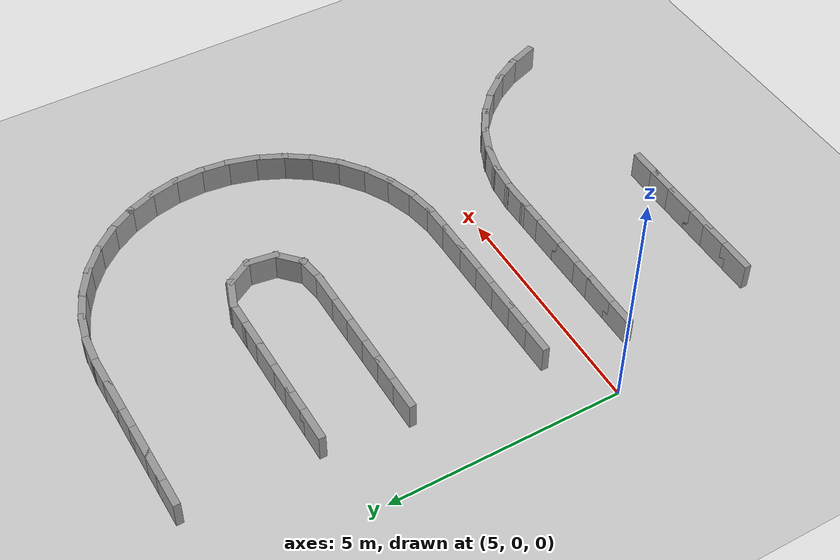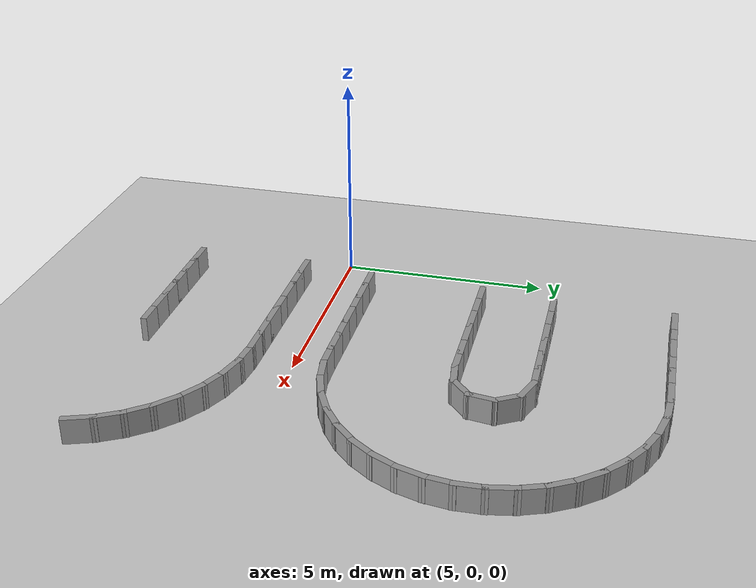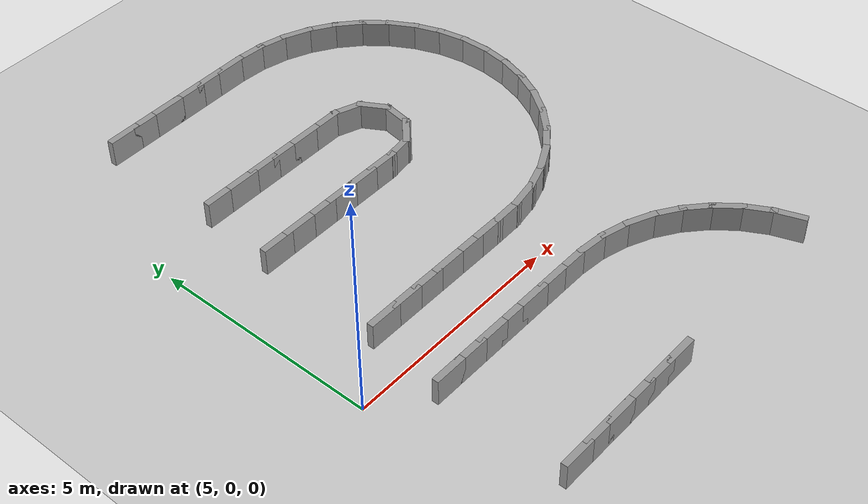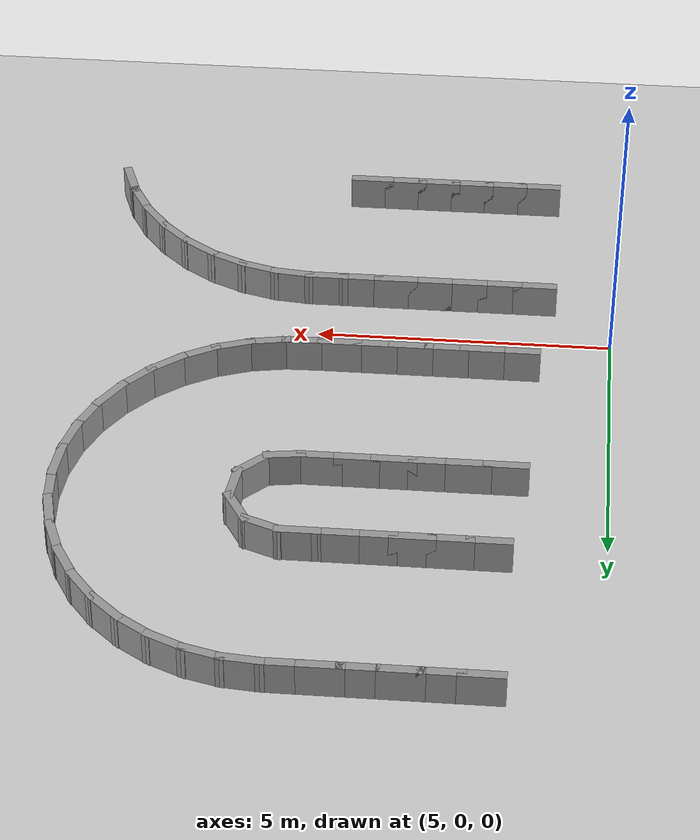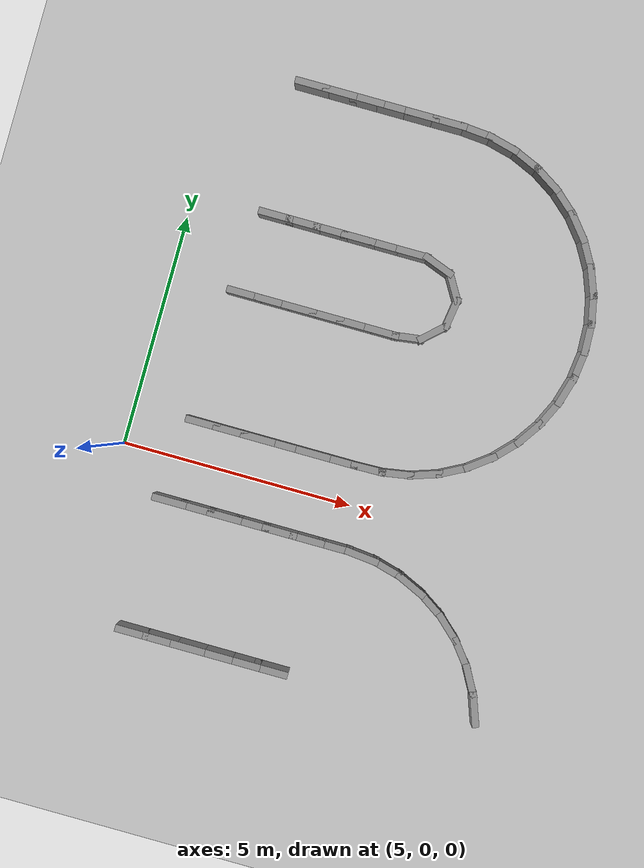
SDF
<sdf version="1.7">
 <world name="default">
  <model name="ground_plane">
   <static>1</static>
   <link name="link">
    <collision name="collision">
     <geometry><plane><normal>0 0 1</normal><size>100 100</size></plane></geometry>
     <surface><friction><ode><mu>100</mu><mu2>50</mu2></ode></friction></surface>
    </collision>
    <visual name="visual">
     <cast_shadows>0</cast_shadows>
     <geometry><plane><normal>0 0 1</normal><size>100 100</size></plane></geometry>
     <material>
      <script><uri>file://media/materials/scripts/gazebo.material</uri><name>Gazebo/Grey</name></script>
     </material>
    </visual>
   </link>
  </model>
  <model name="rand_serp_00">
   <link name="Wall_29">
    <collision name="Wall_29_Collision">
     <geometry><box><size>0.7500 0.1500 0.6000</size></box></geometry>
     <pose>0 0 0.3000 0 -0 0</pose>
    </collision>
    <visual name="Wall_29_Visual">
     <pose>0 0 0.3000 0 -0 0</pose>
     <geometry><box><size>0.7500 0.1500 0.6000</size></box></geometry>
     <material>
      <script><uri>file://media/materials/scripts/gazebo.material</uri><name>Gazebo/Grey</name></script>
      <ambient>1 1 1 1</ambient>
     </material>
    </visual>
    <pose>6.8567 8.3501 0 0 -0 0.00000</pose>
   </link>
   <link name="Wall_30">
    <collision name="Wall_30_Collision">
     <geometry><box><size>0.7500 0.1500 0.6000</size></box></geometry>
     <pose>0 0 0.3000 0 -0 0</pose>
    </collision>
    <visual name="Wall_30_Visual">
     <pose>0 0 0.3000 0 -0 0</pose>
     <geometry><box><size>0.7500 0.1500 0.6000</size></box></geometry>
     <material>
      <script><uri>file://media/materials/scripts/gazebo.material</uri><name>Gazebo/Grey</name></script>
      <ambient>1 1 1 1</ambient>
     </material>
    </visual>
    <pose>7.4567 8.3501 0 0 -0 0.00000</pose>
   </link>
   <link name="Wall_31">
    <collision name="Wall_31_Collision">
     <geometry><box><size>0.7500 0.1500 0.6000</size></box></geometry>
     <pose>0 0 0.3000 0 -0 0</pose>
    </collision>
    <visual name="Wall_31_Visual">
     <pose>0 0 0.3000 0 -0 0</pose>
     <geometry><box><size>0.7500 0.1500 0.6000</size></box></geometry>
     <material>
      <script><uri>file://media/materials/scripts/gazebo.material</uri><name>Gazebo/Grey</name></script>
      <ambient>1 1 1 1</ambient>
     </material>
    </visual>
    <pose>8.0567 8.3501 0 0 -0 0.00000</pose>
   </link>
   <link name="Wall_32">
    <collision name="Wall_32_Collision">
     <geometry><box><size>0.7500 0.1500 0.6000</size></box></geometry>
     <pose>0 0 0.3000 0 -0 0</pose>
    </collision>
    <visual name="Wall_32_Visual">
     <pose>0 0 0.3000 0 -0 0</pose>
     <geometry><box><size>0.7500 0.1500 0.6000</size></box></geometry>
     <material>
      <script><uri>file://media/materials/scripts/gazebo.material</uri><name>Gazebo/Grey</name></script>
      <ambient>1 1 1 1</ambient>
     </material>
    </visual>
    <pose>8.6567 8.3501 0 0 -0 0.00000</pose>
   </link>
   <link name="Wall_33">
    <collision name="Wall_33_Collision">
     <geometry><box><size>0.7500 0.1500 0.6000</size></box></geometry>
     <pose>0 0 0.3000 0 -0 0</pose>
    </collision>
    <visual name="Wall_33_Visual">
     <pose>0 0 0.3000 0 -0 0</pose>
     <geometry><box><size>0.7500 0.1500 0.6000</size></box></geometry>
     <material>
      <script><uri>file://media/materials/scripts/gazebo.material</uri><name>Gazebo/Grey</name></script>
      <ambient>1 1 1 1</ambient>
     </material>
    </visual>
    <pose>9.2567 8.3501 0 0 -0 0.00000</pose>
   </link>
   <link name="Wall_34">
    <collision name="Wall_34_Collision">
     <geometry><box><size>0.7500 0.1500 0.6000</size></box></geometry>
     <pose>0 0 0.3000 0 -0 0</pose>
    </collision>
    <visual name="Wall_34_Visual">
     <pose>0 0 0.3000 0 -0 0</pose>
     <geometry><box><size>0.7500 0.1500 0.6000</size></box></geometry>
     <material>
      <script><uri>file://media/materials/scripts/gazebo.material</uri><name>Gazebo/Grey</name></script>
      <ambient>1 1 1 1</ambient>
     </material>
    </visual>
    <pose>9.8567 8.3500 0 0 -0 -0.00021</pose>
   </link>
   <link name="Wall_35">
    <collision name="Wall_35_Collision">
     <geometry><box><size>0.7494 0.1500 0.6000</size></box></geometry>
     <pose>0 0 0.3000 0 -0 0</pose>
    </collision>
    <visual name="Wall_35_Visual">
     <pose>0 0 0.3000 0 -0 0</pose>
     <geometry><box><size>0.7494 0.1500 0.6000</size></box></geometry>
     <material>
      <script><uri>file://media/materials/scripts/gazebo.material</uri><name>Gazebo/Grey</name></script>
      <ambient>1 1 1 1</ambient>
     </material>
    </visual>
    <pose>10.4553 8.3247 0 0 -0 -0.08430</pose>
   </link>
   <link name="Wall_36">
    <collision name="Wall_36_Collision">
     <geometry><box><size>0.7493 0.1500 0.6000</size></box></geometry>
     <pose>0 0 0.3000 0 -0 0</pose>
    </collision>
    <visual name="Wall_36_Visual">
     <pose>0 0 0.3000 0 -0 0</pose>
     <geometry><box><size>0.7493 0.1500 0.6000</size></box></geometry>
     <material>
      <script><uri>file://media/materials/scripts/gazebo.material</uri><name>Gazebo/Grey</name></script>
      <ambient>1 1 1 1</ambient>
     </material>
    </visual>
    <pose>11.0446 8.2269 0 0 -0 -0.24476</pose>
   </link>
   <link name="Wall_37">
    <collision name="Wall_37_Collision">
     <geometry><box><size>0.7493 0.1500 0.6000</size></box></geometry>
     <pose>0 0 0.3000 0 -0 0</pose>
    </collision>
    <visual name="Wall_37_Visual">
     <pose>0 0 0.3000 0 -0 0</pose>
     <geometry><box><size>0.7493 0.1500 0.6000</size></box></geometry>
     <material>
      <script><uri>file://media/materials/scripts/gazebo.material</uri><name>Gazebo/Grey</name></script>
      <ambient>1 1 1 1</ambient>
     </material>
    </visual>
    <pose>11.6107 8.0361 0 0 -0 -0.40544</pose>
   </link>
   <link name="Wall_38">
    <collision name="Wall_38_Collision">
     <geometry><box><size>0.7493 0.1500 0.6000</size></box></geometry>
     <pose>0 0 0.3000 0 -0 0</pose>
    </collision>
    <visual name="Wall_38_Visual">
     <pose>0 0 0.3000 0 -0 0</pose>
     <geometry><box><size>0.7493 0.1500 0.6000</size></box></geometry>
     <material>
      <script><uri>file://media/materials/scripts/gazebo.material</uri><name>Gazebo/Grey</name></script>
      <ambient>1 1 1 1</ambient>
     </material>
    </visual>
    <pose>12.1390 7.7572 0 0 -0 -0.56612</pose>
   </link>
   <link name="Wall_39">
    <collision name="Wall_39_Collision">
     <geometry><box><size>0.7493 0.1500 0.6000</size></box></geometry>
     <pose>0 0 0.3000 0 -0 0</pose>
    </collision>
    <visual name="Wall_39_Visual">
     <pose>0 0 0.3000 0 -0 0</pose>
     <geometry><box><size>0.7493 0.1500 0.6000</size></box></geometry>
     <material>
      <script><uri>file://media/materials/scripts/gazebo.material</uri><name>Gazebo/Grey</name></script>
      <ambient>1 1 1 1</ambient>
     </material>
    </visual>
    <pose>12.6158 7.3973 0 0 -0 -0.72681</pose>
   </link>
   <link name="Wall_40">
    <collision name="Wall_40_Collision">
     <geometry><box><size>0.7493 0.1500 0.6000</size></box></geometry>
     <pose>0 0 0.3000 0 -0 0</pose>
    </collision>
    <visual name="Wall_40_Visual">
     <pose>0 0 0.3000 0 -0 0</pose>
     <geometry><box><size>0.7493 0.1500 0.6000</size></box></geometry>
     <material>
      <script><uri>file://media/materials/scripts/gazebo.material</uri><name>Gazebo/Grey</name></script>
      <ambient>1 1 1 1</ambient>
     </material>
    </visual>
    <pose>13.0289 6.9658 0 0 -0 -0.88749</pose>
   </link>
   <link name="Wall_41">
    <collision name="Wall_41_Collision">
     <geometry><box><size>0.7493 0.1500 0.6000</size></box></geometry>
     <pose>0 0 0.3000 0 -0 0</pose>
    </collision>
    <visual name="Wall_41_Visual">
     <pose>0 0 0.3000 0 -0 0</pose>
     <geometry><box><size>0.7493 0.1500 0.6000</size></box></geometry>
     <material>
      <script><uri>file://media/materials/scripts/gazebo.material</uri><name>Gazebo/Grey</name></script>
      <ambient>1 1 1 1</ambient>
     </material>
    </visual>
    <pose>13.3677 6.4738 0 0 -0 -1.04818</pose>
   </link>
   <link name="Wall_42">
    <collision name="Wall_42_Collision">
     <geometry><box><size>0.7493 0.1500 0.6000</size></box></geometry>
     <pose>0 0 0.3000 0 -0 0</pose>
    </collision>
    <visual name="Wall_42_Visual">
     <pose>0 0 0.3000 0 -0 0</pose>
     <geometry><box><size>0.7493 0.1500 0.6000</size></box></geometry>
     <material>
      <script><uri>file://media/materials/scripts/gazebo.material</uri><name>Gazebo/Grey</name></script>
      <ambient>1 1 1 1</ambient>
     </material>
    </visual>
    <pose>13.6234 5.9339 0 0 -0 -1.20886</pose>
   </link>
   <link name="Wall_43">
    <collision name="Wall_43_Collision">
     <geometry><box><size>0.7493 0.1500 0.6000</size></box></geometry>
     <pose>0 0 0.3000 0 -0 0</pose>
    </collision>
    <visual name="Wall_43_Visual">
     <pose>0 0 0.3000 0 -0 0</pose>
     <geometry><box><size>0.7493 0.1500 0.6000</size></box></geometry>
     <material>
      <script><uri>file://media/materials/scripts/gazebo.material</uri><name>Gazebo/Grey</name></script>
      <ambient>1 1 1 1</ambient>
     </material>
    </visual>
    <pose>13.7893 5.3601 0 0 -0 -1.36954</pose>
   </link>
   <link name="Wall_44">
    <collision name="Wall_44_Collision">
     <geometry><box><size>0.7493 0.1500 0.6000</size></box></geometry>
     <pose>0 0 0.3000 0 -0 0</pose>
    </collision>
    <visual name="Wall_44_Visual">
     <pose>0 0 0.3000 0 -0 0</pose>
     <geometry><box><size>0.7493 0.1500 0.6000</size></box></geometry>
     <material>
      <script><uri>file://media/materials/scripts/gazebo.material</uri><name>Gazebo/Grey</name></script>
      <ambient>1 1 1 1</ambient>
     </material>
    </visual>
    <pose>13.8614 4.7671 0 0 -0 -1.53023</pose>
   </link>
   <link name="Wall_45">
    <collision name="Wall_45_Collision">
     <geometry><box><size>0.7493 0.1500 0.6000</size></box></geometry>
     <pose>0 0 0.3000 0 -0 0</pose>
    </collision>
    <visual name="Wall_45_Visual">
     <pose>0 0 0.3000 0 -0 0</pose>
     <geometry><box><size>0.7493 0.1500 0.6000</size></box></geometry>
     <material>
      <script><uri>file://media/materials/scripts/gazebo.material</uri><name>Gazebo/Grey</name></script>
      <ambient>1 1 1 1</ambient>
     </material>
    </visual>
    <pose>13.8376 4.1703 0 0 -0 -1.69091</pose>
   </link>
   <link name="Wall_46">
    <collision name="Wall_46_Collision">
     <geometry><box><size>0.7493 0.1500 0.6000</size></box></geometry>
     <pose>0 0 0.3000 0 -0 0</pose>
    </collision>
    <visual name="Wall_46_Visual">
     <pose>0 0 0.3000 0 -0 0</pose>
     <geometry><box><size>0.7493 0.1500 0.6000</size></box></geometry>
     <material>
      <script><uri>file://media/materials/scripts/gazebo.material</uri><name>Gazebo/Grey</name></script>
      <ambient>1 1 1 1</ambient>
     </material>
    </visual>
    <pose>13.7187 3.5849 0 0 -0 -1.85160</pose>
   </link>
   <link name="Wall_47">
    <collision name="Wall_47_Collision">
     <geometry><box><size>0.7493 0.1500 0.6000</size></box></geometry>
     <pose>0 0 0.3000 0 -0 0</pose>
    </collision>
    <visual name="Wall_47_Visual">
     <pose>0 0 0.3000 0 -0 0</pose>
     <geometry><box><size>0.7493 0.1500 0.6000</size></box></geometry>
     <material>
      <script><uri>file://media/materials/scripts/gazebo.material</uri><name>Gazebo/Grey</name></script>
      <ambient>1 1 1 1</ambient>
     </material>
    </visual>
    <pose>13.5076 3.0261 0 0 -0 -2.01228</pose>
   </link>
   <link name="Wall_48">
    <collision name="Wall_48_Collision">
     <geometry><box><size>0.7493 0.1500 0.6000</size></box></geometry>
     <pose>0 0 0.3000 0 -0 0</pose>
    </collision>
    <visual name="Wall_48_Visual">
     <pose>0 0 0.3000 0 -0 0</pose>
     <geometry><box><size>0.7493 0.1500 0.6000</size></box></geometry>
     <material>
      <script><uri>file://media/materials/scripts/gazebo.material</uri><name>Gazebo/Grey</name></script>
      <ambient>1 1 1 1</ambient>
     </material>
    </visual>
    <pose>13.2099 2.5082 0 0 -0 -2.17297</pose>
   </link>
   <link name="Wall_49">
    <collision name="Wall_49_Collision">
     <geometry><box><size>0.7493 0.1500 0.6000</size></box></geometry>
     <pose>0 0 0.3000 0 -0 0</pose>
    </collision>
    <visual name="Wall_49_Visual">
     <pose>0 0 0.3000 0 -0 0</pose>
     <geometry><box><size>0.7493 0.1500 0.6000</size></box></geometry>
     <material>
      <script><uri>file://media/materials/scripts/gazebo.material</uri><name>Gazebo/Grey</name></script>
      <ambient>1 1 1 1</ambient>
     </material>
    </visual>
    <pose>12.8331 2.0447 0 0 -0 -2.33365</pose>
   </link>
   <link name="Wall_50">
    <collision name="Wall_50_Collision">
     <geometry><box><size>0.7493 0.1500 0.6000</size></box></geometry>
     <pose>0 0 0.3000 0 -0 0</pose>
    </collision>
    <visual name="Wall_50_Visual">
     <pose>0 0 0.3000 0 -0 0</pose>
     <geometry><box><size>0.7493 0.1500 0.6000</size></box></geometry>
     <material>
      <script><uri>file://media/materials/scripts/gazebo.material</uri><name>Gazebo/Grey</name></script>
      <ambient>1 1 1 1</ambient>
     </material>
    </visual>
    <pose>12.3870 1.6474 0 0 -0 -2.49433</pose>
   </link>
   <link name="Wall_51">
    <collision name="Wall_51_Collision">
     <geometry><box><size>0.7493 0.1500 0.6000</size></box></geometry>
     <pose>0 0 0.3000 0 -0 0</pose>
    </collision>
    <visual name="Wall_51_Visual">
     <pose>0 0 0.3000 0 -0 0</pose>
     <geometry><box><size>0.7493 0.1500 0.6000</size></box></geometry>
     <material>
      <script><uri>file://media/materials/scripts/gazebo.material</uri><name>Gazebo/Grey</name></script>
      <ambient>1 1 1 1</ambient>
     </material>
    </visual>
    <pose>11.8831 1.3266 0 0 -0 -2.65502</pose>
   </link>
   <link name="Wall_52">
    <collision name="Wall_52_Collision">
     <geometry><box><size>0.7493 0.1500 0.6000</size></box></geometry>
     <pose>0 0 0.3000 0 -0 0</pose>
    </collision>
    <visual name="Wall_52_Visual">
     <pose>0 0 0.3000 0 -0 0</pose>
     <geometry><box><size>0.7493 0.1500 0.6000</size></box></geometry>
     <material>
      <script><uri>file://media/materials/scripts/gazebo.material</uri><name>Gazebo/Grey</name></script>
      <ambient>1 1 1 1</ambient>
     </material>
    </visual>
    <pose>11.3343 1.0905 0 0 -0 -2.81570</pose>
   </link>
   <link name="Wall_53">
    <collision name="Wall_53_Collision">
     <geometry><box><size>0.7493 0.1500 0.6000</size></box></geometry>
     <pose>0 0 0.3000 0 -0 0</pose>
    </collision>
    <visual name="Wall_53_Visual">
     <pose>0 0 0.3000 0 -0 0</pose>
     <geometry><box><size>0.7493 0.1500 0.6000</size></box></geometry>
     <material>
      <script><uri>file://media/materials/scripts/gazebo.material</uri><name>Gazebo/Grey</name></script>
      <ambient>1 1 1 1</ambient>
     </material>
    </visual>
    <pose>10.7548 0.9453 0 0 -0 -2.97639</pose>
   </link>
   <link name="Wall_54">
    <collision name="Wall_54_Collision">
     <geometry><box><size>0.7498 0.1500 0.6000</size></box></geometry>
     <pose>0 0 0.3000 0 -0 0</pose>
    </collision>
    <visual name="Wall_54_Visual">
     <pose>0 0 0.3000 0 -0 0</pose>
     <geometry><box><size>0.7498 0.1500 0.6000</size></box></geometry>
     <material>
      <script><uri>file://media/materials/scripts/gazebo.material</uri><name>Gazebo/Grey</name></script>
      <ambient>1 1 1 1</ambient>
     </material>
    </visual>
    <pose>10.1595 0.8892 0 0 -0 -3.11871</pose>
   </link>
   <link name="Wall_55">
    <collision name="Wall_55_Collision">
     <geometry><box><size>0.7500 0.1500 0.6000</size></box></geometry>
     <pose>0 0 0.3000 0 -0 0</pose>
    </collision>
    <visual name="Wall_55_Visual">
     <pose>0 0 0.3000 0 -0 0</pose>
     <geometry><box><size>0.7500 0.1500 0.6000</size></box></geometry>
     <material>
      <script><uri>file://media/materials/scripts/gazebo.material</uri><name>Gazebo/Grey</name></script>
      <ambient>1 1 1 1</ambient>
     </material>
    </visual>
    <pose>9.5596 0.8823 0 0 -0 3.14159</pose>
   </link>
   <link name="Wall_56">
    <collision name="Wall_56_Collision">
     <geometry><box><size>0.7500 0.1500 0.6000</size></box></geometry>
     <pose>0 0 0.3000 0 -0 0</pose>
    </collision>
    <visual name="Wall_56_Visual">
     <pose>0 0 0.3000 0 -0 0</pose>
     <geometry><box><size>0.7500 0.1500 0.6000</size></box></geometry>
     <material>
      <script><uri>file://media/materials/scripts/gazebo.material</uri><name>Gazebo/Grey</name></script>
      <ambient>1 1 1 1</ambient>
     </material>
    </visual>
    <pose>8.9596 0.8823 0 0 -0 3.14159</pose>
   </link>
   <link name="Wall_57">
    <collision name="Wall_57_Collision">
     <geometry><box><size>0.7500 0.1500 0.6000</size></box></geometry>
     <pose>0 0 0.3000 0 -0 0</pose>
    </collision>
    <visual name="Wall_57_Visual">
     <pose>0 0 0.3000 0 -0 0</pose>
     <geometry><box><size>0.7500 0.1500 0.6000</size></box></geometry>
     <material>
      <script><uri>file://media/materials/scripts/gazebo.material</uri><name>Gazebo/Grey</name></script>
      <ambient>1 1 1 1</ambient>
     </material>
    </visual>
    <pose>8.3596 0.8823 0 0 -0 3.14159</pose>
   </link>
   <link name="Wall_58">
    <collision name="Wall_58_Collision">
     <geometry><box><size>0.7500 0.1500 0.6000</size></box></geometry>
     <pose>0 0 0.3000 0 -0 0</pose>
    </collision>
    <visual name="Wall_58_Visual">
     <pose>0 0 0.3000 0 -0 0</pose>
     <geometry><box><size>0.7500 0.1500 0.6000</size></box></geometry>
     <material>
      <script><uri>file://media/materials/scripts/gazebo.material</uri><name>Gazebo/Grey</name></script>
      <ambient>1 1 1 1</ambient>
     </material>
    </visual>
    <pose>7.7596 0.8823 0 0 -0 3.14159</pose>
   </link>
   <link name="Wall_59">
    <collision name="Wall_59_Collision">
     <geometry><box><size>0.7500 0.1500 0.6000</size></box></geometry>
     <pose>0 0 0.3000 0 -0 0</pose>
    </collision>
    <visual name="Wall_59_Visual">
     <pose>0 0 0.3000 0 -0 0</pose>
     <geometry><box><size>0.7500 0.1500 0.6000</size></box></geometry>
     <material>
      <script><uri>file://media/materials/scripts/gazebo.material</uri><name>Gazebo/Grey</name></script>
      <ambient>1 1 1 1</ambient>
     </material>
    </visual>
    <pose>7.1596 0.8823 0 0 -0 3.14159</pose>
   </link>
   <link name="Wall_60">
    <collision name="Wall_60_Collision">
     <geometry><box><size>0.7500 0.1500 0.6000</size></box></geometry>
     <pose>0 0 0.3000 0 -0 0</pose>
    </collision>
    <visual name="Wall_60_Visual">
     <pose>0 0 0.3000 0 -0 0</pose>
     <geometry><box><size>0.7500 0.1500 0.6000</size></box></geometry>
     <material>
      <script><uri>file://media/materials/scripts/gazebo.material</uri><name>Gazebo/Grey</name></script>
      <ambient>1 1 1 1</ambient>
     </material>
    </visual>
    <pose>6.5596 0.8823 0 0 -0 3.14159</pose>
   </link>
   <link name="Wall_120">
    <collision name="Wall_120_Collision">
     <geometry><box><size>0.7500 0.1500 0.6000</size></box></geometry>
     <pose>0 0 0.3000 0 -0 0</pose>
    </collision>
    <visual name="Wall_120_Visual">
     <pose>0 0 0.3000 0 -0 0</pose>
     <geometry><box><size>0.7500 0.1500 0.6000</size></box></geometry>
     <material>
      <script><uri>file://media/materials/scripts/gazebo.material</uri><name>Gazebo/Grey</name></script>
      <ambient>1 1 1 1</ambient>
     </material>
    </visual>
    <pose>6.3253 -0.8823 0 0 -0 0.00000</pose>
   </link>
   <link name="Wall_121">
    <collision name="Wall_121_Collision">
     <geometry><box><size>0.7500 0.1500 0.6000</size></box></geometry>
     <pose>0 0 0.3000 0 -0 0</pose>
    </collision>
    <visual name="Wall_121_Visual">
     <pose>0 0 0.3000 0 -0 0</pose>
     <geometry><box><size>0.7500 0.1500 0.6000</size></box></geometry>
     <material>
      <script><uri>file://media/materials/scripts/gazebo.material</uri><name>Gazebo/Grey</name></script>
      <ambient>1 1 1 1</ambient>
     </material>
    </visual>
    <pose>6.9253 -0.8823 0 0 -0 0.00000</pose>
   </link>
   <link name="Wall_122">
    <collision name="Wall_122_Collision">
     <geometry><box><size>0.7500 0.1500 0.6000</size></box></geometry>
     <pose>0 0 0.3000 0 -0 0</pose>
    </collision>
    <visual name="Wall_122_Visual">
     <pose>0 0 0.3000 0 -0 0</pose>
     <geometry><box><size>0.7500 0.1500 0.6000</size></box></geometry>
     <material>
      <script><uri>file://media/materials/scripts/gazebo.material</uri><name>Gazebo/Grey</name></script>
      <ambient>1 1 1 1</ambient>
     </material>
    </visual>
    <pose>7.5253 -0.8823 0 0 -0 0.00000</pose>
   </link>
   <link name="Wall_123">
    <collision name="Wall_123_Collision">
     <geometry><box><size>0.7500 0.1500 0.6000</size></box></geometry>
     <pose>0 0 0.3000 0 -0 0</pose>
    </collision>
    <visual name="Wall_123_Visual">
     <pose>0 0 0.3000 0 -0 0</pose>
     <geometry><box><size>0.7500 0.1500 0.6000</size></box></geometry>
     <material>
      <script><uri>file://media/materials/scripts/gazebo.material</uri><name>Gazebo/Grey</name></script>
      <ambient>1 1 1 1</ambient>
     </material>
    </visual>
    <pose>8.1253 -0.8823 0 0 -0 0.00000</pose>
   </link>
   <link name="Wall_124">
    <collision name="Wall_124_Collision">
     <geometry><box><size>0.7500 0.1500 0.6000</size></box></geometry>
     <pose>0 0 0.3000 0 -0 0</pose>
    </collision>
    <visual name="Wall_124_Visual">
     <pose>0 0 0.3000 0 -0 0</pose>
     <geometry><box><size>0.7500 0.1500 0.6000</size></box></geometry>
     <material>
      <script><uri>file://media/materials/scripts/gazebo.material</uri><name>Gazebo/Grey</name></script>
      <ambient>1 1 1 1</ambient>
     </material>
    </visual>
    <pose>8.7253 -0.8823 0 0 -0 0.00000</pose>
   </link>
   <link name="Wall_125">
    <collision name="Wall_125_Collision">
     <geometry><box><size>0.7500 0.1500 0.6000</size></box></geometry>
     <pose>0 0 0.3000 0 -0 0</pose>
    </collision>
    <visual name="Wall_125_Visual">
     <pose>0 0 0.3000 0 -0 0</pose>
     <geometry><box><size>0.7500 0.1500 0.6000</size></box></geometry>
     <material>
      <script><uri>file://media/materials/scripts/gazebo.material</uri><name>Gazebo/Grey</name></script>
      <ambient>1 1 1 1</ambient>
     </material>
    </visual>
    <pose>9.3253 -0.8823 0 0 -0 0.00000</pose>
   </link>
   <link name="Wall_126">
    <collision name="Wall_126_Collision">
     <geometry><box><size>0.7500 0.1500 0.6000</size></box></geometry>
     <pose>0 0 0.3000 0 -0 0</pose>
    </collision>
    <visual name="Wall_126_Visual">
     <pose>0 0 0.3000 0 -0 0</pose>
     <geometry><box><size>0.7500 0.1500 0.6000</size></box></geometry>
     <material>
      <script><uri>file://media/materials/scripts/gazebo.material</uri><name>Gazebo/Grey</name></script>
      <ambient>1 1 1 1</ambient>
     </material>
    </visual>
    <pose>9.9253 -0.8830 0 0 -0 -0.00249</pose>
   </link>
   <link name="Wall_127">
    <collision name="Wall_127_Collision">
     <geometry><box><size>0.7493 0.1500 0.6000</size></box></geometry>
     <pose>0 0 0.3000 0 -0 0</pose>
    </collision>
    <visual name="Wall_127_Visual">
     <pose>0 0 0.3000 0 -0 0</pose>
     <geometry><box><size>0.7493 0.1500 0.6000</size></box></geometry>
     <material>
      <script><uri>file://media/materials/scripts/gazebo.material</uri><name>Gazebo/Grey</name></script>
      <ambient>1 1 1 1</ambient>
     </material>
    </visual>
    <pose>10.5234 -0.9145 0 0 -0 -0.10250</pose>
   </link>
   <link name="Wall_128">
    <collision name="Wall_128_Collision">
     <geometry><box><size>0.7493 0.1500 0.6000</size></box></geometry>
     <pose>0 0 0.3000 0 -0 0</pose>
    </collision>
    <visual name="Wall_128_Visual">
     <pose>0 0 0.3000 0 -0 0</pose>
     <geometry><box><size>0.7493 0.1500 0.6000</size></box></geometry>
     <material>
      <script><uri>file://media/materials/scripts/gazebo.material</uri><name>Gazebo/Grey</name></script>
      <ambient>1 1 1 1</ambient>
     </material>
    </visual>
    <pose>11.1108 -1.0230 0 0 -0 -0.26296</pose>
   </link>
   <link name="Wall_129">
    <collision name="Wall_129_Collision">
     <geometry><box><size>0.7493 0.1500 0.6000</size></box></geometry>
     <pose>0 0 0.3000 0 -0 0</pose>
    </collision>
    <visual name="Wall_129_Visual">
     <pose>0 0 0.3000 0 -0 0</pose>
     <geometry><box><size>0.7493 0.1500 0.6000</size></box></geometry>
     <material>
      <script><uri>file://media/materials/scripts/gazebo.material</uri><name>Gazebo/Grey</name></script>
      <ambient>1 1 1 1</ambient>
     </material>
    </visual>
    <pose>11.6733 -1.2241 0 0 -0 -0.42365</pose>
   </link>
   <link name="Wall_130">
    <collision name="Wall_130_Collision">
     <geometry><box><size>0.7493 0.1500 0.6000</size></box></geometry>
     <pose>0 0 0.3000 0 -0 0</pose>
    </collision>
    <visual name="Wall_130_Visual">
     <pose>0 0 0.3000 0 -0 0</pose>
     <geometry><box><size>0.7493 0.1500 0.6000</size></box></geometry>
     <material>
      <script><uri>file://media/materials/scripts/gazebo.material</uri><name>Gazebo/Grey</name></script>
      <ambient>1 1 1 1</ambient>
     </material>
    </visual>
    <pose>12.1964 -1.5126 0 0 -0 -0.58433</pose>
   </link>
   <link name="Wall_131">
    <collision name="Wall_131_Collision">
     <geometry><box><size>0.7493 0.1500 0.6000</size></box></geometry>
     <pose>0 0 0.3000 0 -0 0</pose>
    </collision>
    <visual name="Wall_131_Visual">
     <pose>0 0 0.3000 0 -0 0</pose>
     <geometry><box><size>0.7493 0.1500 0.6000</size></box></geometry>
     <material>
      <script><uri>file://media/materials/scripts/gazebo.material</uri><name>Gazebo/Grey</name></script>
      <ambient>1 1 1 1</ambient>
     </material>
    </visual>
    <pose>12.6666 -1.8810 0 0 -0 -0.74501</pose>
   </link>
   <link name="Wall_132">
    <collision name="Wall_132_Collision">
     <geometry><box><size>0.7493 0.1500 0.6000</size></box></geometry>
     <pose>0 0 0.3000 0 -0 0</pose>
    </collision>
    <visual name="Wall_132_Visual">
     <pose>0 0 0.3000 0 -0 0</pose>
     <geometry><box><size>0.7493 0.1500 0.6000</size></box></geometry>
     <material>
      <script><uri>file://media/materials/scripts/gazebo.material</uri><name>Gazebo/Grey</name></script>
      <ambient>1 1 1 1</ambient>
     </material>
    </visual>
    <pose>13.0718 -2.3200 0 0 -0 -0.90570</pose>
   </link>
   <link name="Wall_133">
    <collision name="Wall_133_Collision">
     <geometry><box><size>0.7493 0.1500 0.6000</size></box></geometry>
     <pose>0 0 0.3000 0 -0 0</pose>
    </collision>
    <visual name="Wall_133_Visual">
     <pose>0 0 0.3000 0 -0 0</pose>
     <geometry><box><size>0.7493 0.1500 0.6000</size></box></geometry>
     <material>
      <script><uri>file://media/materials/scripts/gazebo.material</uri><name>Gazebo/Grey</name></script>
      <ambient>1 1 1 1</ambient>
     </material>
    </visual>
    <pose>13.4015 -2.8181 0 0 -0 -1.06638</pose>
   </link>
   <link name="Wall_134">
    <collision name="Wall_134_Collision">
     <geometry><box><size>0.7493 0.1500 0.6000</size></box></geometry>
     <pose>0 0 0.3000 0 -0 0</pose>
    </collision>
    <visual name="Wall_134_Visual">
     <pose>0 0 0.3000 0 -0 0</pose>
     <geometry><box><size>0.7493 0.1500 0.6000</size></box></geometry>
     <material>
      <script><uri>file://media/materials/scripts/gazebo.material</uri><name>Gazebo/Grey</name></script>
      <ambient>1 1 1 1</ambient>
     </material>
    </visual>
    <pose>13.6473 -3.3626 0 0 -0 -1.22707</pose>
   </link>
   <link name="Wall_211">
    <collision name="Wall_211_Collision">
     <geometry><box><size>0.7500 0.1500 0.6000</size></box></geometry>
     <pose>0 0 0.3000 0 -0 0</pose>
    </collision>
    <visual name="Wall_211_Visual">
     <pose>0 0 0.3000 0 -0 0</pose>
     <geometry><box><size>0.7500 0.1500 0.6000</size></box></geometry>
     <material>
      <script><uri>file://media/materials/scripts/gazebo.material</uri><name>Gazebo/Grey</name></script>
      <ambient>1 1 1 1</ambient>
     </material>
    </visual>
    <pose>6.8567 5.4985 0 0 -0 0.00000</pose>
   </link>
   <link name="Wall_212">
    <collision name="Wall_212_Collision">
     <geometry><box><size>0.7500 0.1500 0.6000</size></box></geometry>
     <pose>0 0 0.3000 0 -0 0</pose>
    </collision>
    <visual name="Wall_212_Visual">
     <pose>0 0 0.3000 0 -0 0</pose>
     <geometry><box><size>0.7500 0.1500 0.6000</size></box></geometry>
     <material>
      <script><uri>file://media/materials/scripts/gazebo.material</uri><name>Gazebo/Grey</name></script>
      <ambient>1 1 1 1</ambient>
     </material>
    </visual>
    <pose>7.4567 5.4985 0 0 -0 0.00000</pose>
   </link>
   <link name="Wall_213">
    <collision name="Wall_213_Collision">
     <geometry><box><size>0.7500 0.1500 0.6000</size></box></geometry>
     <pose>0 0 0.3000 0 -0 0</pose>
    </collision>
    <visual name="Wall_213_Visual">
     <pose>0 0 0.3000 0 -0 0</pose>
     <geometry><box><size>0.7500 0.1500 0.6000</size></box></geometry>
     <material>
      <script><uri>file://media/materials/scripts/gazebo.material</uri><name>Gazebo/Grey</name></script>
      <ambient>1 1 1 1</ambient>
     </material>
    </visual>
    <pose>8.0567 5.4985 0 0 -0 0.00000</pose>
   </link>
   <link name="Wall_214">
    <collision name="Wall_214_Collision">
     <geometry><box><size>0.7500 0.1500 0.6000</size></box></geometry>
     <pose>0 0 0.3000 0 -0 0</pose>
    </collision>
    <visual name="Wall_214_Visual">
     <pose>0 0 0.3000 0 -0 0</pose>
     <geometry><box><size>0.7500 0.1500 0.6000</size></box></geometry>
     <material>
      <script><uri>file://media/materials/scripts/gazebo.material</uri><name>Gazebo/Grey</name></script>
      <ambient>1 1 1 1</ambient>
     </material>
    </visual>
    <pose>8.6567 5.4985 0 0 -0 0.00000</pose>
   </link>
   <link name="Wall_215">
    <collision name="Wall_215_Collision">
     <geometry><box><size>0.7500 0.1500 0.6000</size></box></geometry>
     <pose>0 0 0.3000 0 -0 0</pose>
    </collision>
    <visual name="Wall_215_Visual">
     <pose>0 0 0.3000 0 -0 0</pose>
     <geometry><box><size>0.7500 0.1500 0.6000</size></box></geometry>
     <material>
      <script><uri>file://media/materials/scripts/gazebo.material</uri><name>Gazebo/Grey</name></script>
      <ambient>1 1 1 1</ambient>
     </material>
    </visual>
    <pose>9.2567 5.4985 0 0 -0 0.00000</pose>
   </link>
   <link name="Wall_216">
    <collision name="Wall_216_Collision">
     <geometry><box><size>0.7500 0.1500 0.6000</size></box></geometry>
     <pose>0 0 0.3000 0 -0 0</pose>
    </collision>
    <visual name="Wall_216_Visual">
     <pose>0 0 0.3000 0 -0 0</pose>
     <geometry><box><size>0.7500 0.1500 0.6000</size></box></geometry>
     <material>
      <script><uri>file://media/materials/scripts/gazebo.material</uri><name>Gazebo/Grey</name></script>
      <ambient>1 1 1 1</ambient>
     </material>
    </visual>
    <pose>9.8567 5.4983 0 0 -0 -0.00061</pose>
   </link>
   <link name="Wall_217">
    <collision name="Wall_217_Collision">
     <geometry><box><size>0.7384 0.1500 0.6000</size></box></geometry>
     <pose>0 0 0.3000 0 -0 0</pose>
    </collision>
    <visual name="Wall_217_Visual">
     <pose>0 0 0.3000 0 -0 0</pose>
     <geometry><box><size>0.7384 0.1500 0.6000</size></box></geometry>
     <material>
      <script><uri>file://media/materials/scripts/gazebo.material</uri><name>Gazebo/Grey</name></script>
      <ambient>1 1 1 1</ambient>
     </material>
    </visual>
    <pose>10.4325 5.3959 0 0 -0 -0.35498</pose>
   </link>
   <link name="Wall_218">
    <collision name="Wall_218_Collision">
     <geometry><box><size>0.7384 0.1500 0.6000</size></box></geometry>
     <pose>0 0 0.3000 0 -0 0</pose>
    </collision>
    <visual name="Wall_218_Visual">
     <pose>0 0 0.3000 0 -0 0</pose>
     <geometry><box><size>0.7384 0.1500 0.6000</size></box></geometry>
     <material>
      <script><uri>file://media/materials/scripts/gazebo.material</uri><name>Gazebo/Grey</name></script>
      <ambient>1 1 1 1</ambient>
     </material>
    </visual>
    <pose>10.8585 5.0406 0 0 -0 -1.03521</pose>
   </link>
   <link name="Wall_219">
    <collision name="Wall_219_Collision">
     <geometry><box><size>0.7384 0.1500 0.6000</size></box></geometry>
     <pose>0 0 0.3000 0 -0 0</pose>
    </collision>
    <visual name="Wall_219_Visual">
     <pose>0 0 0.3000 0 -0 0</pose>
     <geometry><box><size>0.7384 0.1500 0.6000</size></box></geometry>
     <material>
      <script><uri>file://media/materials/scripts/gazebo.material</uri><name>Gazebo/Grey</name></script>
      <ambient>1 1 1 1</ambient>
     </material>
    </visual>
    <pose>10.9663 4.4964 0 0 -0 -1.71527</pose>
   </link>
   <link name="Wall_220">
    <collision name="Wall_220_Collision">
     <geometry><box><size>0.7385 0.1500 0.6000</size></box></geometry>
     <pose>0 0 0.3000 0 -0 0</pose>
    </collision>
    <visual name="Wall_220_Visual">
     <pose>0 0 0.3000 0 -0 0</pose>
     <geometry><box><size>0.7385 0.1500 0.6000</size></box></geometry>
     <material>
      <script><uri>file://media/materials/scripts/gazebo.material</uri><name>Gazebo/Grey</name></script>
      <ambient>1 1 1 1</ambient>
     </material>
    </visual>
    <pose>10.7079 4.0055 0 0 -0 -2.39534</pose>
   </link>
   <link name="Wall_221">
    <collision name="Wall_221_Collision">
     <geometry><box><size>0.6883 0.1500 0.6000</size></box></geometry>
     <pose>0 0 0.3000 0 -0 0</pose>
    </collision>
    <visual name="Wall_221_Visual">
     <pose>0 0 0.3000 0 -0 0</pose>
     <geometry><box><size>0.6883 0.1500 0.6000</size></box></geometry>
     <material>
      <script><uri>file://media/materials/scripts/gazebo.material</uri><name>Gazebo/Grey</name></script>
      <ambient>1 1 1 1</ambient>
     </material>
    </visual>
    <pose>10.2251 3.7698 0 0 -0 -3.00765</pose>
   </link>
   <link name="Wall_222">
    <collision name="Wall_222_Collision">
     <geometry><box><size>0.7500 0.1500 0.6000</size></box></geometry>
     <pose>0 0 0.3000 0 -0 0</pose>
    </collision>
    <visual name="Wall_222_Visual">
     <pose>0 0 0.3000 0 -0 0</pose>
     <geometry><box><size>0.7500 0.1500 0.6000</size></box></geometry>
     <material>
      <script><uri>file://media/materials/scripts/gazebo.material</uri><name>Gazebo/Grey</name></script>
      <ambient>1 1 1 1</ambient>
     </material>
    </visual>
    <pose>9.6584 3.7339 0 0 -0 3.14159</pose>
   </link>
   <link name="Wall_223">
    <collision name="Wall_223_Collision">
     <geometry><box><size>0.7500 0.1500 0.6000</size></box></geometry>
     <pose>0 0 0.3000 0 -0 0</pose>
    </collision>
    <visual name="Wall_223_Visual">
     <pose>0 0 0.3000 0 -0 0</pose>
     <geometry><box><size>0.7500 0.1500 0.6000</size></box></geometry>
     <material>
      <script><uri>file://media/materials/scripts/gazebo.material</uri><name>Gazebo/Grey</name></script>
      <ambient>1 1 1 1</ambient>
     </material>
    </visual>
    <pose>9.0584 3.7339 0 0 -0 3.14159</pose>
   </link>
   <link name="Wall_224">
    <collision name="Wall_224_Collision">
     <geometry><box><size>0.7500 0.1500 0.6000</size></box></geometry>
     <pose>0 0 0.3000 0 -0 0</pose>
    </collision>
    <visual name="Wall_224_Visual">
     <pose>0 0 0.3000 0 -0 0</pose>
     <geometry><box><size>0.7500 0.1500 0.6000</size></box></geometry>
     <material>
      <script><uri>file://media/materials/scripts/gazebo.material</uri><name>Gazebo/Grey</name></script>
      <ambient>1 1 1 1</ambient>
     </material>
    </visual>
    <pose>8.4584 3.7339 0 0 -0 3.14159</pose>
   </link>
   <link name="Wall_225">
    <collision name="Wall_225_Collision">
     <geometry><box><size>0.7500 0.1500 0.6000</size></box></geometry>
     <pose>0 0 0.3000 0 -0 0</pose>
    </collision>
    <visual name="Wall_225_Visual">
     <pose>0 0 0.3000 0 -0 0</pose>
     <geometry><box><size>0.7500 0.1500 0.6000</size></box></geometry>
     <material>
      <script><uri>file://media/materials/scripts/gazebo.material</uri><name>Gazebo/Grey</name></script>
      <ambient>1 1 1 1</ambient>
     </material>
    </visual>
    <pose>7.8584 3.7339 0 0 -0 3.14159</pose>
   </link>
   <link name="Wall_226">
    <collision name="Wall_226_Collision">
     <geometry><box><size>0.7500 0.1500 0.6000</size></box></geometry>
     <pose>0 0 0.3000 0 -0 0</pose>
    </collision>
    <visual name="Wall_226_Visual">
     <pose>0 0 0.3000 0 -0 0</pose>
     <geometry><box><size>0.7500 0.1500 0.6000</size></box></geometry>
     <material>
      <script><uri>file://media/materials/scripts/gazebo.material</uri><name>Gazebo/Grey</name></script>
      <ambient>1 1 1 1</ambient>
     </material>
    </visual>
    <pose>7.2584 3.7339 0 0 -0 3.14159</pose>
   </link>
   <link name="Wall_227">
    <collision name="Wall_227_Collision">
     <geometry><box><size>0.7500 0.1500 0.6000</size></box></geometry>
     <pose>0 0 0.3000 0 -0 0</pose>
    </collision>
    <visual name="Wall_227_Visual">
     <pose>0 0 0.3000 0 -0 0</pose>
     <geometry><box><size>0.7500 0.1500 0.6000</size></box></geometry>
     <material>
      <script><uri>file://media/materials/scripts/gazebo.material</uri><name>Gazebo/Grey</name></script>
      <ambient>1 1 1 1</ambient>
     </material>
    </visual>
    <pose>6.6584 3.7339 0 0 -0 3.14159</pose>
   </link>
   <link name="Wall_302">
    <collision name="Wall_302_Collision">
     <geometry><box><size>0.7500 0.1500 0.6000</size></box></geometry>
     <pose>0 0 0.3000 0 -0 0</pose>
    </collision>
    <visual name="Wall_302_Visual">
     <pose>0 0 0.3000 0 -0 0</pose>
     <geometry><box><size>0.7500 0.1500 0.6000</size></box></geometry>
     <material>
      <script><uri>file://media/materials/scripts/gazebo.material</uri><name>Gazebo/Grey</name></script>
      <ambient>1 1 1 1</ambient>
     </material>
    </visual>
    <pose>6.3253 -3.7339 0 0 -0 0.00000</pose>
   </link>
   <link name="Wall_303">
    <collision name="Wall_303_Collision">
     <geometry><box><size>0.7500 0.1500 0.6000</size></box></geometry>
     <pose>0 0 0.3000 0 -0 0</pose>
    </collision>
    <visual name="Wall_303_Visual">
     <pose>0 0 0.3000 0 -0 0</pose>
     <geometry><box><size>0.7500 0.1500 0.6000</size></box></geometry>
     <material>
      <script><uri>file://media/materials/scripts/gazebo.material</uri><name>Gazebo/Grey</name></script>
      <ambient>1 1 1 1</ambient>
     </material>
    </visual>
    <pose>6.9253 -3.7339 0 0 -0 0.00000</pose>
   </link>
   <link name="Wall_304">
    <collision name="Wall_304_Collision">
     <geometry><box><size>0.7500 0.1500 0.6000</size></box></geometry>
     <pose>0 0 0.3000 0 -0 0</pose>
    </collision>
    <visual name="Wall_304_Visual">
     <pose>0 0 0.3000 0 -0 0</pose>
     <geometry><box><size>0.7500 0.1500 0.6000</size></box></geometry>
     <material>
      <script><uri>file://media/materials/scripts/gazebo.material</uri><name>Gazebo/Grey</name></script>
      <ambient>1 1 1 1</ambient>
     </material>
    </visual>
    <pose>7.5253 -3.7339 0 0 -0 0.00000</pose>
   </link>
   <link name="Wall_305">
    <collision name="Wall_305_Collision">
     <geometry><box><size>0.7500 0.1500 0.6000</size></box></geometry>
     <pose>0 0 0.3000 0 -0 0</pose>
    </collision>
    <visual name="Wall_305_Visual">
     <pose>0 0 0.3000 0 -0 0</pose>
     <geometry><box><size>0.7500 0.1500 0.6000</size></box></geometry>
     <material>
      <script><uri>file://media/materials/scripts/gazebo.material</uri><name>Gazebo/Grey</name></script>
      <ambient>1 1 1 1</ambient>
     </material>
    </visual>
    <pose>8.1253 -3.7339 0 0 -0 0.00000</pose>
   </link>
   <link name="Wall_306">
    <collision name="Wall_306_Collision">
     <geometry><box><size>0.7500 0.1500 0.6000</size></box></geometry>
     <pose>0 0 0.3000 0 -0 0</pose>
    </collision>
    <visual name="Wall_306_Visual">
     <pose>0 0 0.3000 0 -0 0</pose>
     <geometry><box><size>0.7500 0.1500 0.6000</size></box></geometry>
     <material>
      <script><uri>file://media/materials/scripts/gazebo.material</uri><name>Gazebo/Grey</name></script>
      <ambient>1 1 1 1</ambient>
     </material>
    </visual>
    <pose>8.7253 -3.7339 0 0 -0 0.00000</pose>
   </link>
   <link name="Wall_307">
    <collision name="Wall_307_Collision">
     <geometry><box><size>0.7500 0.1500 0.6000</size></box></geometry>
     <pose>0 0 0.3000 0 -0 0</pose>
    </collision>
    <visual name="Wall_307_Visual">
     <pose>0 0 0.3000 0 -0 0</pose>
     <geometry><box><size>0.7500 0.1500 0.6000</size></box></geometry>
     <material>
      <script><uri>file://media/materials/scripts/gazebo.material</uri><name>Gazebo/Grey</name></script>
      <ambient>1 1 1 1</ambient>
     </material>
    </visual>
    <pose>9.3253 -3.7339 0 0 -0 0.00000</pose>
   </link>
   <static>1</static>
  </model>
 </world>
</sdf>
